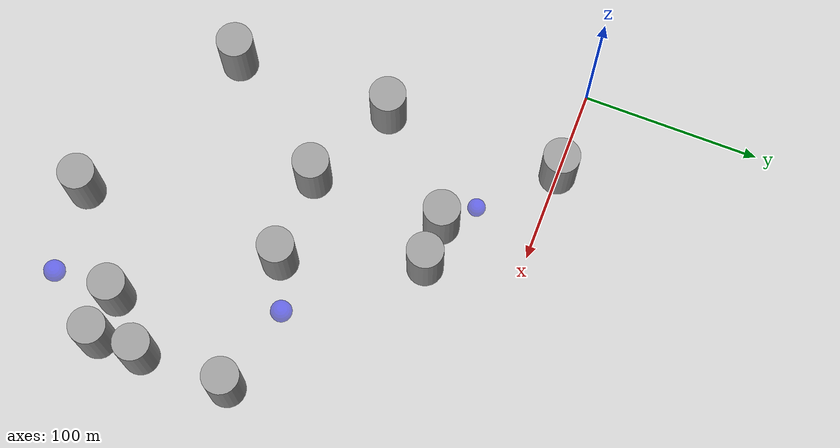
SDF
<?xml version='1.0' encoding='utf-8'?>
<sdf version="1.6">
  <world name="default">
    <physics name="default_physics" default="0" type="ode">
      <ode>
        <solver>
          <type>quick</type>
          <iters>50</iters>
          <sor>0.8</sor>
          <use_dynamic_moi_rescaling>0</use_dynamic_moi_rescaling>
        </solver>
        <constraints>
          <cfm>0</cfm>
          <erp>0.2</erp>
          <contact_max_correcting_vel>0.1</contact_max_correcting_vel>
          <contact_surface_layer>0</contact_surface_layer>
        </constraints>
      </ode>
      <real_time_update_rate>100</real_time_update_rate>
      <max_step_size>0.01</max_step_size>
      <real_time_factor>1</real_time_factor>
    </physics>
    <light name="sun" type="directional">
      <cast_shadows>1</cast_shadows>
      <pose frame="">0 0 10 0 -0 0</pose>
      <diffuse>0.8 0.8 0.8 1</diffuse>
      <specular>0.2 0.2 0.2 1</specular>
      <attenuation>
        <range>1000</range>
        <constant>0.9</constant>
        <linear>0.01</linear>
        <quadratic>0.001</quadratic>
      </attenuation>
      <direction>-0.5 0.1 -0.9</direction>
    </light>
    <model name="ground_plane">
      <static>1</static>
      <link name="link">
        <collision name="collision">
          <geometry>
            <plane>
              <normal>0 0 1</normal>
              <size>800.0 800.0</size>
            </plane>
          </geometry>
          <surface>
            <friction>
              <ode>
                <mu>100</mu>
                <mu2>50</mu2>
              </ode>
              <torsional>
                <ode />
              </torsional>
            </friction>
            <contact>
              <ode />
            </contact>
            <bounce />
          </surface>
          <max_contacts>10</max_contacts>
        </collision>
        <visual name="visual">
          <cast_shadows>0</cast_shadows>
          <geometry>
            <plane>
              <normal>0 0 1</normal>
              <size>800.0 800.0</size>
            </plane>
          </geometry>
          <material>
            <script>
              <uri>file://media/materials/scripts/gazebo.material</uri>
              <name>Gazebo/Grey</name>
            </script>
          </material>
        </visual>
        <self_collide>0</self_collide>
        <enable_wind>0</enable_wind>
        <kinematic>0</kinematic>
      </link>
    </model>
    <gravity>0 0 0</gravity>
    <magnetic_field>6e-06 2.3e-05 -4.2e-05</magnetic_field>
    <atmosphere type="adiabatic" />
    <scene>
      <ambient>0.4 0.4 0.4 1</ambient>
      <background>0.7 0.7 0.7 1</background>
      <shadows>1</shadows>
    </scene>
    <wind />
    <spherical_coordinates>
      <surface_model>EARTH_WGS84</surface_model>
      <latitude_deg>0</latitude_deg>
      <longitude_deg>0</longitude_deg>
      <elevation>0</elevation>
      <heading_deg>0</heading_deg>
    </spherical_coordinates>
    <model name="suav1">
      <link name="base_link">
        <pose frame="">0 0 0 0 -0 0</pose>
        <inertial>
          <pose frame="">0 0 0 0 -0 0</pose>
          <mass>0.1</mass>
          <inertia>
            <ixx>1</ixx>
            <ixy>0</ixy>
            <ixz>0</ixz>
            <iyy>1</iyy>
            <iyz>0</iyz>
            <izz>1</izz>
          </inertia>
        </inertial>
        <collision name="base_link_fixed_joint_lump__body_link_collision">
          <pose frame="">0 0 0 0 -0 0</pose>
          <geometry>
            <mesh>
              <scale>0.1 0.1 0.1</scale>
              <uri>package://simple_airplane_description/meshes/simple_airplane.dae</uri>
            </mesh>
          </geometry>
          <surface>
            <contact>
              <ode />
            </contact>
            <friction>
              <ode />
              <torsional>
                <ode />
              </torsional>
            </friction>
            <bounce />
          </surface>
          <max_contacts>10</max_contacts>
        </collision>
        <visual name="base_link_fixed_joint_lump__base_visual_visual">
          <pose frame="">0 0 0 0 -0 0</pose>
          <geometry>
            <mesh>
              <scale>0.1 0.1 0.1</scale>
              <uri>package://simple_airplane_description/meshes/simple_airplane.dae</uri>
            </mesh>
          </geometry>
        </visual>
        <velocity_decay />
        <gravity>0</gravity>
        <gravity>1</gravity>
        <velocity_decay />
        <gravity>0</gravity>
        <self_collide>0</self_collide>
        <enable_wind>0</enable_wind>
        <kinematic>0</kinematic>
        <visual name="front_camera_housing">
          <pose>0 0 0.015 0 -0 0</pose>
          <geometry>
            <box>
              <size>0.04 0.05 0.04</size>
            </box>
          </geometry>
        </visual>
        <visual name="front_camera_lens">
          <pose>0.025 0 0.015 0 1.5708 0</pose>
          <geometry>
            <cylinder>
              <length>0.01</length>
              <radius>0.012</radius>
            </cylinder>
          </geometry>
        </visual>
        <sensor name="front_camera" type="camera">
          <pose>0.03 0 0.015 0 0 0</pose>
          <always_on>true</always_on>
          <update_rate>15</update_rate>
          <visualize>false</visualize>
          <camera name="front_camera">
            <horizontal_fov>1.5707963267948966</horizontal_fov>
            <image>
              <width>640</width>
              <height>360</height>
              <format>R8G8B8</format>
            </image>
            <clip>
              <near>0.05</near>
              <far>300</far>
            </clip>
          </camera>
          <plugin filename="libgazebo_ros_camera.so" name="front_camera_controller">
            <robotNamespace>/suav1</robotNamespace>
            <cameraName>front_camera</cameraName>
            <imageTopicName>image_raw</imageTopicName>
            <cameraInfoTopicName>camera_info</cameraInfoTopicName>
            <frameName>front_camera_optical_frame</frameName>
            <updateRate>15.0</updateRate>
          </plugin>
        </sensor>
      </link>
      <static>0</static>
      <plugin name="object_controller" filename="libgazebo_ros_planar_move_with_banking_and_pitching_plugin1.so">
        <commandTopic>cmd_vel</commandTopic>
        <odometryTopic>odom</odometryTopic>
        <odometryFrame>odom</odometryFrame>
        <odometryRate>80.0</odometryRate>
        <robotBaseFrame>base_link</robotBaseFrame>
        <robotNamespace>/suav1/</robotNamespace>
      </plugin>
      <pose frame="">0 0 2 0 -0 0</pose>
    </model>
    <model name="static_obs1">
      <static>true</static>
      <pose frame="">50 0 18.13715 0 0 0</pose>
      <link name="link">
        <inertial>
          <mass>1</mass>
          <inertia>
            <ixx>0.145833</ixx>
            <ixy>0</ixy>
            <ixz>0</ixz>
            <iyy>0.145833</iyy>
            <iyz>0</iyz>
            <izz>0.125</izz>
          </inertia>
          <pose frame="">0 0 0 0 -0 0</pose>
        </inertial>
        <collision name="collision">
          <geometry>
            <cylinder>
              <radius>10.1458</radius>
              <length>36.2743</length>
            </cylinder>
          </geometry>
          <max_contacts>10</max_contacts>
          <surface>
            <contact>
              <ode />
            </contact>
            <bounce />
            <friction>
              <torsional>
                <ode />
              </torsional>
              <ode />
            </friction>
          </surface>
        </collision>
        <visual name="visual">
          <geometry>
            <cylinder>
              <radius>10.1458</radius>
              <length>36.2743</length>
            </cylinder>
          </geometry>
          <material>
            <script>
              <name>Gazebo/Grey</name>
              <uri>file://media/materials/scripts/gazebo.material</uri>
            </script>
          </material>
        </visual>
        <self_collide>0</self_collide>
        <enable_wind>0</enable_wind>
        <kinematic>0</kinematic>
      </link>
    </model>
    <model name="unit_cylinder_clone">
      <static>true</static>
      <pose frame="">100.023 -50.0251 18.13715 0 0 0</pose>
      <link name="link">
        <inertial>
          <mass>1</mass>
          <inertia>
            <ixx>0.145833</ixx>
            <ixy>0</ixy>
            <ixz>0</ixz>
            <iyy>0.145833</iyy>
            <iyz>0</iyz>
            <izz>0.125</izz>
          </inertia>
          <pose frame="">0 0 0 0 -0 0</pose>
        </inertial>
        <collision name="collision">
          <geometry>
            <cylinder>
              <radius>10.1458</radius>
              <length>36.2743</length>
            </cylinder>
          </geometry>
          <max_contacts>10</max_contacts>
          <surface>
            <contact>
              <ode />
            </contact>
            <bounce />
            <friction>
              <torsional>
                <ode />
              </torsional>
              <ode />
            </friction>
          </surface>
        </collision>
        <visual name="visual">
          <geometry>
            <cylinder>
              <radius>10.1458</radius>
              <length>36.2743</length>
            </cylinder>
          </geometry>
          <material>
            <script>
              <name>Gazebo/Grey</name>
              <uri>file://media/materials/scripts/gazebo.material</uri>
            </script>
          </material>
        </visual>
        <self_collide>0</self_collide>
        <enable_wind>0</enable_wind>
        <kinematic>0</kinematic>
      </link>
    </model>
    <model name="unit_cylinder_clone_0">
      <static>true</static>
      <pose frame="">125.023 -50.0251 18.13715 0 0 0</pose>
      <link name="link">
        <inertial>
          <mass>1</mass>
          <inertia>
            <ixx>0.145833</ixx>
            <ixy>0</ixy>
            <ixz>0</ixz>
            <iyy>0.145833</iyy>
            <iyz>0</iyz>
            <izz>0.125</izz>
          </inertia>
          <pose frame="">0 0 0 0 -0 0</pose>
        </inertial>
        <collision name="collision">
          <geometry>
            <cylinder>
              <radius>10.1458</radius>
              <length>36.2743</length>
            </cylinder>
          </geometry>
          <max_contacts>10</max_contacts>
          <surface>
            <contact>
              <ode />
            </contact>
            <bounce />
            <friction>
              <torsional>
                <ode />
              </torsional>
              <ode />
            </friction>
          </surface>
        </collision>
        <visual name="visual">
          <geometry>
            <cylinder>
              <radius>10.1458</radius>
              <length>36.2743</length>
            </cylinder>
          </geometry>
          <material>
            <script>
              <name>Gazebo/Grey</name>
              <uri>file://media/materials/scripts/gazebo.material</uri>
            </script>
          </material>
        </visual>
        <self_collide>0</self_collide>
        <enable_wind>0</enable_wind>
        <kinematic>0</kinematic>
      </link>
    </model>
    <model name="unit_cylinder_clone_1">
      <static>true</static>
      <pose frame="">50.0229 -100.025 18.13715 0 0 0</pose>
      <link name="link">
        <inertial>
          <mass>1</mass>
          <inertia>
            <ixx>0.145833</ixx>
            <ixy>0</ixy>
            <ixz>0</ixz>
            <iyy>0.145833</iyy>
            <iyz>0</iyz>
            <izz>0.125</izz>
          </inertia>
          <pose frame="">0 0 0 0 -0 0</pose>
        </inertial>
        <collision name="collision">
          <geometry>
            <cylinder>
              <radius>10.1458</radius>
              <length>36.2743</length>
            </cylinder>
          </geometry>
          <max_contacts>10</max_contacts>
          <surface>
            <contact>
              <ode />
            </contact>
            <bounce />
            <friction>
              <torsional>
                <ode />
              </torsional>
              <ode />
            </friction>
          </surface>
        </collision>
        <visual name="visual">
          <geometry>
            <cylinder>
              <radius>10.1458</radius>
              <length>36.2743</length>
            </cylinder>
          </geometry>
          <material>
            <script>
              <name>Gazebo/Grey</name>
              <uri>file://media/materials/scripts/gazebo.material</uri>
            </script>
          </material>
        </visual>
        <self_collide>0</self_collide>
        <enable_wind>0</enable_wind>
        <kinematic>0</kinematic>
      </link>
    </model>
    <model name="unit_cylinder_clone_2">
      <static>true</static>
      <pose frame="">100.133 -125.017 18.13715 0 0 0</pose>
      <link name="link">
        <inertial>
          <mass>1</mass>
          <inertia>
            <ixx>0.145833</ixx>
            <ixy>0</ixy>
            <ixz>0</ixz>
            <iyy>0.145833</iyy>
            <iyz>0</iyz>
            <izz>0.125</izz>
          </inertia>
          <pose frame="">0 0 0 0 -0 0</pose>
        </inertial>
        <collision name="collision">
          <geometry>
            <cylinder>
              <radius>10.1458</radius>
              <length>36.2743</length>
            </cylinder>
          </geometry>
          <max_contacts>10</max_contacts>
          <surface>
            <contact>
              <ode />
            </contact>
            <bounce />
            <friction>
              <torsional>
                <ode />
              </torsional>
              <ode />
            </friction>
          </surface>
        </collision>
        <visual name="visual">
          <geometry>
            <cylinder>
              <radius>10.1458</radius>
              <length>36.2743</length>
            </cylinder>
          </geometry>
          <material>
            <script>
              <name>Gazebo/Grey</name>
              <uri>file://media/materials/scripts/gazebo.material</uri>
            </script>
          </material>
        </visual>
        <self_collide>0</self_collide>
        <enable_wind>0</enable_wind>
        <kinematic>0</kinematic>
      </link>
    </model>
    <model name="unit_cylinder_clone_3_clone">
      <static>true</static>
      <pose frame="">225.023 -125.025 18.13715 0 0 0</pose>
      <link name="link">
        <inertial>
          <mass>1</mass>
          <inertia>
            <ixx>0.145833</ixx>
            <ixy>0</ixy>
            <ixz>0</ixz>
            <iyy>0.145833</iyy>
            <iyz>0</iyz>
            <izz>0.125</izz>
          </inertia>
          <pose frame="">0 0 0 0 -0 0</pose>
        </inertial>
        <collision name="collision">
          <geometry>
            <cylinder>
              <radius>10.1458</radius>
              <length>36.2743</length>
            </cylinder>
          </geometry>
          <max_contacts>10</max_contacts>
          <surface>
            <contact>
              <ode />
            </contact>
            <bounce />
            <friction>
              <torsional>
                <ode />
              </torsional>
              <ode />
            </friction>
          </surface>
        </collision>
        <visual name="visual">
          <geometry>
            <cylinder>
              <radius>10.1458</radius>
              <length>36.2743</length>
            </cylinder>
          </geometry>
          <material>
            <script>
              <name>Gazebo/Grey</name>
              <uri>file://media/materials/scripts/gazebo.material</uri>
            </script>
          </material>
        </visual>
        <self_collide>0</self_collide>
        <enable_wind>0</enable_wind>
        <kinematic>0</kinematic>
      </link>
    </model>
    <model name="unit_cylinder_clone_3_clone_0">
      <static>true</static>
      <pose frame="">50.0229 -190.025 18.13715 0 0 0</pose>
      <link name="link">
        <inertial>
          <mass>1</mass>
          <inertia>
            <ixx>0.145833</ixx>
            <ixy>0</ixy>
            <ixz>0</ixz>
            <iyy>0.145833</iyy>
            <iyz>0</iyz>
            <izz>0.125</izz>
          </inertia>
          <pose frame="">0 0 0 0 -0 0</pose>
        </inertial>
        <collision name="collision">
          <geometry>
            <cylinder>
              <radius>10.1458</radius>
              <length>36.2743</length>
            </cylinder>
          </geometry>
          <max_contacts>10</max_contacts>
          <surface>
            <contact>
              <ode />
            </contact>
            <bounce />
            <friction>
              <torsional>
                <ode />
              </torsional>
              <ode />
            </friction>
          </surface>
        </collision>
        <visual name="visual">
          <geometry>
            <cylinder>
              <radius>10.1458</radius>
              <length>36.2743</length>
            </cylinder>
          </geometry>
          <material>
            <script>
              <name>Gazebo/Grey</name>
              <uri>file://media/materials/scripts/gazebo.material</uri>
            </script>
          </material>
        </visual>
        <self_collide>0</self_collide>
        <enable_wind>0</enable_wind>
        <kinematic>0</kinematic>
      </link>
    </model>
    <model name="unit_cylinder_clone_3_clone_0_clone">
      <static>true</static>
      <pose frame="">150.023 -125.025 18.13715 0 0 0</pose>
      <link name="link">
        <inertial>
          <mass>1</mass>
          <inertia>
            <ixx>0.145833</ixx>
            <ixy>0</ixy>
            <ixz>0</ixz>
            <iyy>0.145833</iyy>
            <iyz>0</iyz>
            <izz>0.125</izz>
          </inertia>
          <pose frame="">0 0 0 0 -0 0</pose>
        </inertial>
        <collision name="collision">
          <geometry>
            <cylinder>
              <radius>10.1458</radius>
              <length>36.2743</length>
            </cylinder>
          </geometry>
          <max_contacts>10</max_contacts>
          <surface>
            <contact>
              <ode />
            </contact>
            <bounce />
            <friction>
              <torsional>
                <ode />
              </torsional>
              <ode />
            </friction>
          </surface>
        </collision>
        <visual name="visual">
          <geometry>
            <cylinder>
              <radius>10.1458</radius>
              <length>36.2743</length>
            </cylinder>
          </geometry>
          <material>
            <script>
              <name>Gazebo/Grey</name>
              <uri>file://media/materials/scripts/gazebo.material</uri>
            </script>
          </material>
        </visual>
        <self_collide>0</self_collide>
        <enable_wind>0</enable_wind>
        <kinematic>0</kinematic>
      </link>
    </model>
    <model name="unit_cylinder_clone_3_clone_0_clone_0">
      <static>true</static>
      <pose frame="">225.023 -200.025 18.13715 0 0 0</pose>
      <link name="link">
        <inertial>
          <mass>1</mass>
          <inertia>
            <ixx>0.145833</ixx>
            <ixy>0</ixy>
            <ixz>0</ixz>
            <iyy>0.145833</iyy>
            <iyz>0</iyz>
            <izz>0.125</izz>
          </inertia>
          <pose frame="">0 0 0 0 -0 0</pose>
        </inertial>
        <collision name="collision">
          <geometry>
            <cylinder>
              <radius>10.1458</radius>
              <length>36.2743</length>
            </cylinder>
          </geometry>
          <max_contacts>10</max_contacts>
          <surface>
            <contact>
              <ode />
            </contact>
            <bounce />
            <friction>
              <torsional>
                <ode />
              </torsional>
              <ode />
            </friction>
          </surface>
        </collision>
        <visual name="visual">
          <geometry>
            <cylinder>
              <radius>10.1458</radius>
              <length>36.2743</length>
            </cylinder>
          </geometry>
          <material>
            <script>
              <name>Gazebo/Grey</name>
              <uri>file://media/materials/scripts/gazebo.material</uri>
            </script>
          </material>
        </visual>
        <self_collide>0</self_collide>
        <enable_wind>0</enable_wind>
        <kinematic>0</kinematic>
      </link>
    </model>
    <model name="unit_cylinder_clone_3_clone_0_clone_0_clone">
      <static>true</static>
      <pose frame="">225.023 -175.025 18.13715 0 0 0</pose>
      <link name="link">
        <inertial>
          <mass>1</mass>
          <inertia>
            <ixx>0.145833</ixx>
            <ixy>0</ixy>
            <ixz>0</ixz>
            <iyy>0.145833</iyy>
            <iyz>0</iyz>
            <izz>0.125</izz>
          </inertia>
          <pose frame="">0 0 0 0 -0 0</pose>
        </inertial>
        <collision name="collision">
          <geometry>
            <cylinder>
              <radius>10.1458</radius>
              <length>36.2743</length>
            </cylinder>
          </geometry>
          <max_contacts>10</max_contacts>
          <surface>
            <contact>
              <ode />
            </contact>
            <bounce />
            <friction>
              <torsional>
                <ode />
              </torsional>
              <ode />
            </friction>
          </surface>
        </collision>
        <visual name="visual">
          <geometry>
            <cylinder>
              <radius>10.1458</radius>
              <length>36.2743</length>
            </cylinder>
          </geometry>
          <material>
            <script>
              <name>Gazebo/Grey</name>
              <uri>file://media/materials/scripts/gazebo.material</uri>
            </script>
          </material>
        </visual>
        <self_collide>0</self_collide>
        <enable_wind>0</enable_wind>
        <kinematic>0</kinematic>
      </link>
    </model>
    <model name="unit_cylinder_clone_3_clone_0_clone_0_clone_clone">
      <static>true</static>
      <pose frame="">200.023 -200.025 18.13715 0 0 0</pose>
      <link name="link">
        <inertial>
          <mass>1</mass>
          <inertia>
            <ixx>0.145833</ixx>
            <ixy>0</ixy>
            <ixz>0</ixz>
            <iyy>0.145833</iyy>
            <iyz>0</iyz>
            <izz>0.125</izz>
          </inertia>
          <pose frame="">0 0 0 0 -0 0</pose>
        </inertial>
        <collision name="collision">
          <geometry>
            <cylinder>
              <radius>10.1458</radius>
              <length>36.2743</length>
            </cylinder>
          </geometry>
          <max_contacts>10</max_contacts>
          <surface>
            <contact>
              <ode />
            </contact>
            <bounce />
            <friction>
              <torsional>
                <ode />
              </torsional>
              <ode />
            </friction>
          </surface>
        </collision>
        <visual name="visual">
          <geometry>
            <cylinder>
              <radius>10.1458</radius>
              <length>36.2743</length>
            </cylinder>
          </geometry>
          <material>
            <script>
              <name>Gazebo/Grey</name>
              <uri>file://media/materials/scripts/gazebo.material</uri>
            </script>
          </material>
        </visual>
        <self_collide>0</self_collide>
        <enable_wind>0</enable_wind>
        <kinematic>0</kinematic>
      </link>
    </model>
    <model name="unit_cylinder_clone_3_clone_0_clone_1">
      <static>true</static>
      <pose frame="">150.023 -240.025 18.13715 0 0 0</pose>
      <link name="link">
        <inertial>
          <mass>1</mass>
          <inertia>
            <ixx>0.145833</ixx>
            <ixy>0</ixy>
            <ixz>0</ixz>
            <iyy>0.145833</iyy>
            <iyz>0</iyz>
            <izz>0.125</izz>
          </inertia>
          <pose frame="">0 0 0 0 -0 0</pose>
        </inertial>
        <collision name="collision">
          <geometry>
            <cylinder>
              <radius>10.1458</radius>
              <length>36.2743</length>
            </cylinder>
          </geometry>
          <max_contacts>10</max_contacts>
          <surface>
            <contact>
              <ode />
            </contact>
            <bounce />
            <friction>
              <torsional>
                <ode />
              </torsional>
              <ode />
            </friction>
          </surface>
        </collision>
        <visual name="visual">
          <geometry>
            <cylinder>
              <radius>10.1458</radius>
              <length>36.2743</length>
            </cylinder>
          </geometry>
          <material>
            <script>
              <name>Gazebo/Grey</name>
              <uri>file://media/materials/scripts/gazebo.material</uri>
            </script>
          </material>
        </visual>
        <self_collide>0</self_collide>
        <enable_wind>0</enable_wind>
        <kinematic>0</kinematic>
      </link>
    </model>
    <gui fullscreen="0">
      <camera name="user_camera">
        <pose frame="">150.0 -340.0 260.0 0.0 0.85 1.5707963268</pose>
        <view_controller>orbit</view_controller>
        <projection_type>perspective</projection_type>
      </camera>
    </gui>
    <model name="sphere_obs1">
      <static>true</static>
      <pose>85.0 -35.0 8.0 0 0 0</pose>
      <link name="link">
        <gravity>false</gravity>
        <collision name="collision">
          <geometry>
            <sphere>
              <radius>5.0</radius>
            </sphere>
          </geometry>
        </collision>
        <visual name="visual">
          <geometry>
            <sphere>
              <radius>5.0</radius>
            </sphere>
          </geometry>
          <material>
            <ambient>0 0 1 1</ambient>
            <diffuse>0 0 1 1</diffuse>
          </material>
          <transparency>0.5</transparency>
        </visual>
      </link>
    </model>
    <model name="sphere_obs2">
      <static>true</static>
      <pose>178.0 -112.0 14.0 0 0 0</pose>
      <link name="link">
        <gravity>false</gravity>
        <collision name="collision">
          <geometry>
            <sphere>
              <radius>6.0</radius>
            </sphere>
          </geometry>
        </collision>
        <visual name="visual">
          <geometry>
            <sphere>
              <radius>6.0</radius>
            </sphere>
          </geometry>
          <material>
            <ambient>0 0 1 1</ambient>
            <diffuse>0 0 1 1</diffuse>
          </material>
          <transparency>0.5</transparency>
        </visual>
      </link>
    </model>
    <model name="sphere_obs3">
      <static>true</static>
      <pose>200.0 -235.0 12.0 0 0 0</pose>
      <link name="link">
        <gravity>false</gravity>
        <collision name="collision">
          <geometry>
            <sphere>
              <radius>6.0</radius>
            </sphere>
          </geometry>
        </collision>
        <visual name="visual">
          <geometry>
            <sphere>
              <radius>6.0</radius>
            </sphere>
          </geometry>
          <material>
            <ambient>0 0 1 1</ambient>
            <diffuse>0 0 1 1</diffuse>
          </material>
          <transparency>0.5</transparency>
        </visual>
      </link>
    </model>
  </world>
</sdf>
